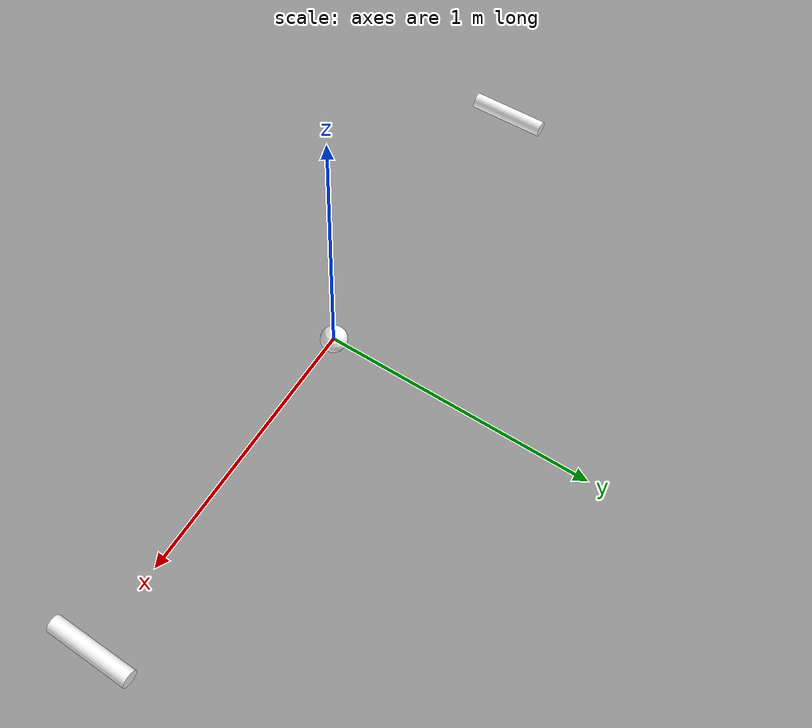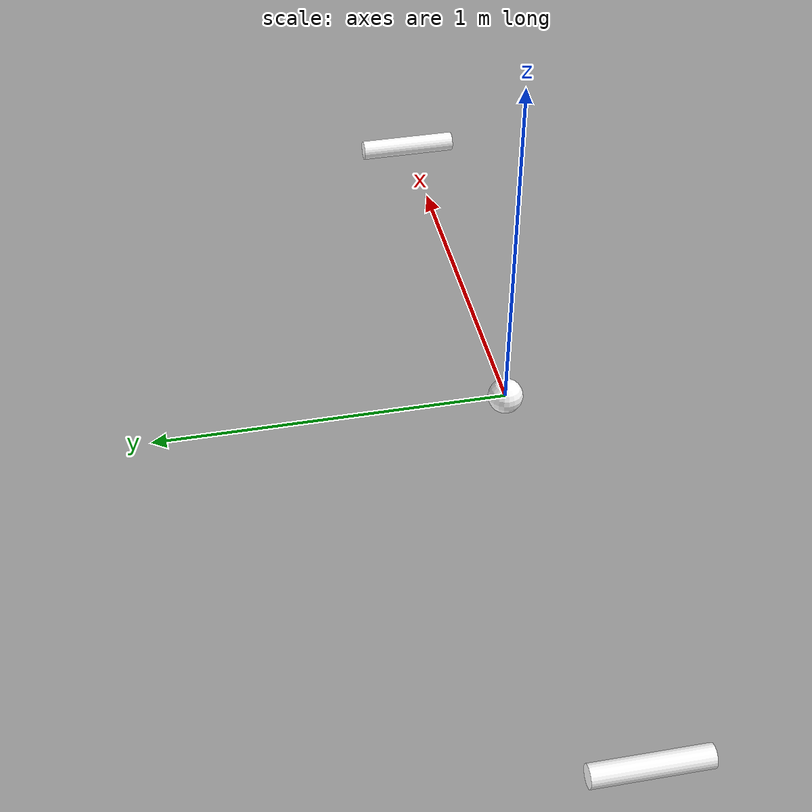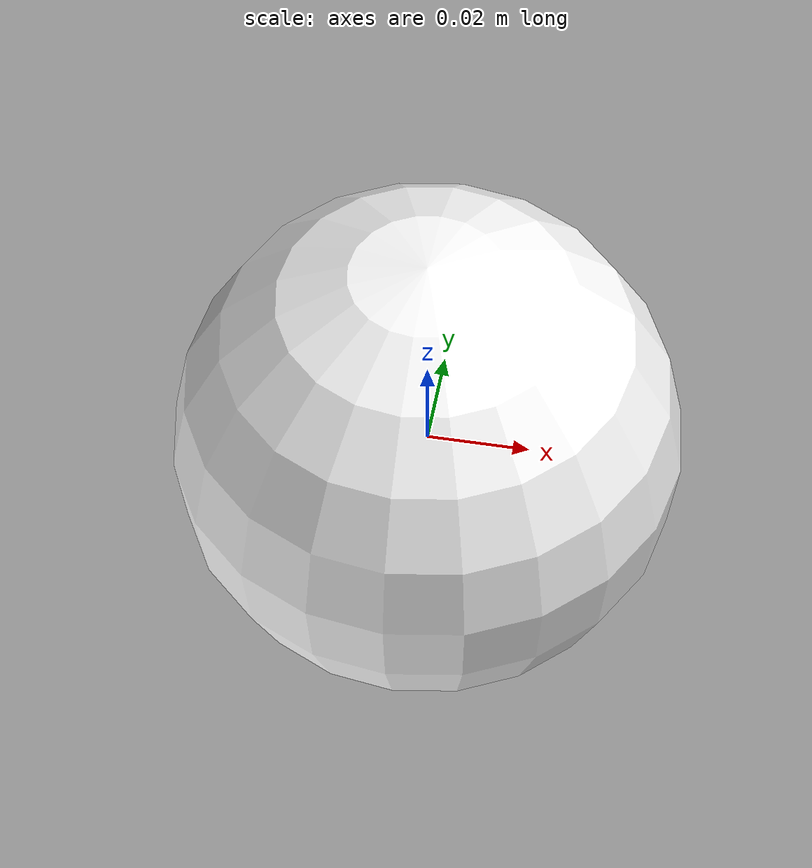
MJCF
<mujoco model="roboschool_pong">
    <compiler angle="radian" inertiafromgeom="true"/>
    <default>
        <joint armature="1" damping="1" limited="true"/>
        <geom friction="1 0.1 0.1" rgba="0.7 0.7 0 1"/>
    </default>
    <worldbody>
        <!--conaffinity="0"-->
        <!--geom fromto="-1.6 -1 0 1.6 -1 0" name="sideS" rgba="0.9 0.4 0.6 1" size=".03" type="cylinder"/-->
        <!--geom fromto="-1.6  1 0 1.6  1 0" name="sideN" rgba="0.9 0.4 0.6 1" size=".03" type="cylinder"/-->
        <body name="player0" pos="-1.3 0 0">
            <joint axis="1 0 0" limited="true" name="p0x" pos="0 0 0" range="-0.3 0.3" type="slide"/>
            <joint axis="0 1 0" limited="true" name="p0y" pos="0 0 0" range="-1.1 1.1" type="slide"/>
            <geom fromto="0 -0.15 0  0 +0.15 0" name="player0bat" rgba="1.0 1.0 1.0 1" size=".03" type="cylinder"/>
        </body>
        <body name="player1" pos="+1.3 0 0">
            <joint axis="1 0 0" limited="true" name="p1x" pos="0 0 0" range="-0.3 0.3" type="slide"/>
            <joint axis="0 1 0" limited="true" name="p1y" pos="0 0 0" range="-1.1 1.1" type="slide"/>
            <geom fromto="0 -0.15 0  0 +0.15 0" name="player1bat" rgba="1.0 1.0 1.0 1" size=".03" type="cylinder"/>
        </body>
        <body name="ball" pos="0 0 0">
            <joint armature="0" axis="1 0 0" damping="0" limited="true" name="ballx" pos="0 0 0" range="-2.0 2.0"
                   stiffness="0" type="slide"/>
            <joint armature="0" axis="0 1 0" damping="0" limited="true" name="bally" pos="0 0 0" range="-1.1 1.1"
                   stiffness="0" type="slide"/>
            <geom name="ball" pos="0 0 0" rgba="1.0 1.0 1.0 1" size=".05" type="sphere"/>
        </body>
    </worldbody>
</mujoco>
